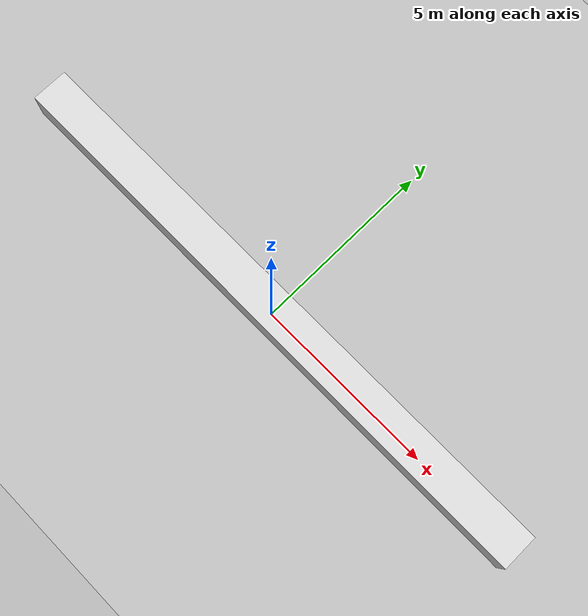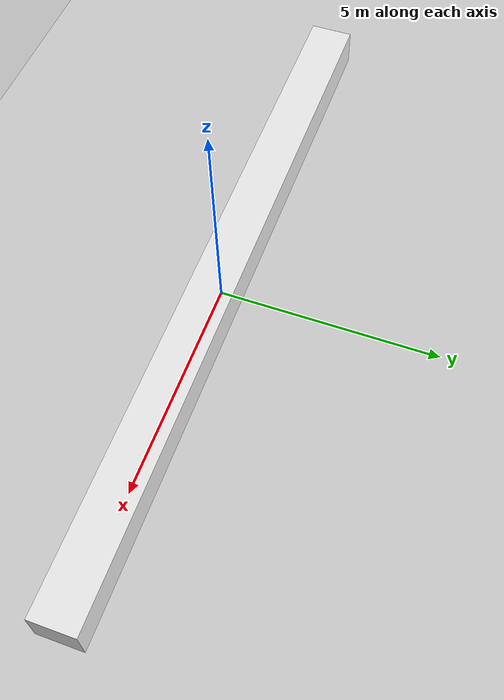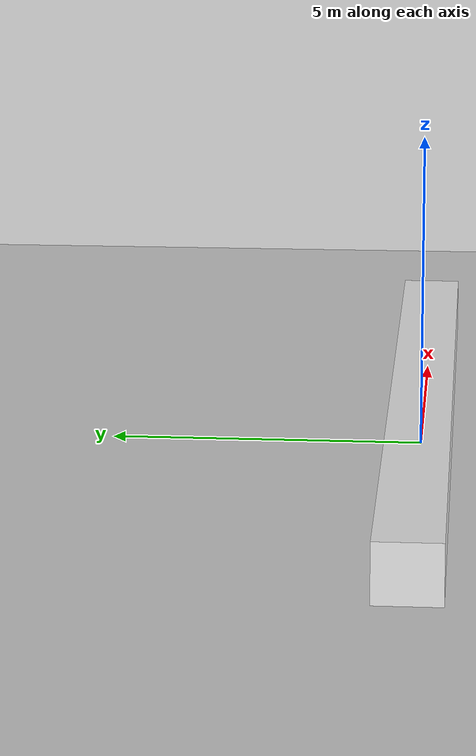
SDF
<sdf version="1.6">
 <world name="default">
  <light name="sun" type="directional">
   <pose>0 0 10 0 -0 0</pose>
   <diffuse>0.8 0.8 0.8 1</diffuse>
   <specular>0.2 0.2 0.2 1</specular>
   <attenuation>
    <range>1000</range>
    <constant>0.9</constant>
    <linear>0.01</linear>
    <quadratic>0.001</quadratic>
   </attenuation>
   <direction>-0.5 0.1 -0.9</direction>
  </light>
  <model name="ground_plane">
   <pose>2 0 0 0 -0 0</pose>
   <static>1</static>
   <link name="link">
    <collision name="collision">
     <geometry><plane><normal>0 0 1</normal><size>100 100</size></plane></geometry>
     <surface>
      <contact><collide_bitmask>65535</collide_bitmask></contact>
      <friction><ode><mu>100</mu><mu2>50</mu2></ode></friction>
     </surface>
    </collision>
    <visual name="visual">
     <cast_shadows>0</cast_shadows>
     <geometry><plane><normal>0 0 1</normal><size>100 100</size></plane></geometry>
     <material>
      <script><uri>file://media/materials/scripts/gazebo.material</uri><name>Gazebo/Grey</name></script>
     </material>
    </visual>
   </link>
  </model>
  <gravity>0 0 -9.8</gravity>
  <magnetic_field>6e-06 2.3e-05 -4.2e-05</magnetic_field>
  <atmosphere type="adiabatic"/>
  <physics name="default_physics" default="0" type="ode">
   <max_step_size>0.001</max_step_size>
   <real_time_factor>1</real_time_factor>
   <real_time_update_rate>1000</real_time_update_rate>
  </physics>
  <scene><ambient>0.4 0.4 0.4 1</ambient><background>0.7 0.7 0.7 1</background><shadows>1</shadows></scene>
  <audio><device>default</device></audio>
  <spherical_coordinates>
   <surface_model>EARTH_WGS84</surface_model>
   <latitude_deg>0</latitude_deg>
   <longitude_deg>0</longitude_deg>
   <elevation>0</elevation>
   <heading_deg>0</heading_deg>
  </spherical_coordinates>
  <model name="table_cube">
   <link name="link">
    <pose>0 0 0.45 0 -0 0</pose>
    <inertial>
     <mass>10</mass>
     <inertia><ixx>0.17</ixx><ixy>0</ixy><ixz>0</ixz><iyy>0.17</iyy><iyz>0</iyz><izz>0.17</izz></inertia>
    </inertial>
    <collision name="collision">
     <geometry><box><size>16 1 0.9</size></box></geometry>
     <surface>
      <contact>
       <poissons_ratio>0.347</poissons_ratio>
       <elastic_modulus>8.8e+09</elastic_modulus>
       <ode><kp>100000</kp><kd>100</kd><max_vel>100</max_vel><min_depth>0.001</min_depth></ode>
      </contact>
     </surface>
    </collision>
    <visual name="visual">
     <geometry><box><size>16 1 0.9</size></box></geometry>
     <material>
      <script><uri>file://media/materials/scripts/gazebo.material</uri><name>Gazebo/White</name></script>
     </material>
    </visual>
   </link>
   <static>1</static>
  </model>
 </world>
</sdf>
